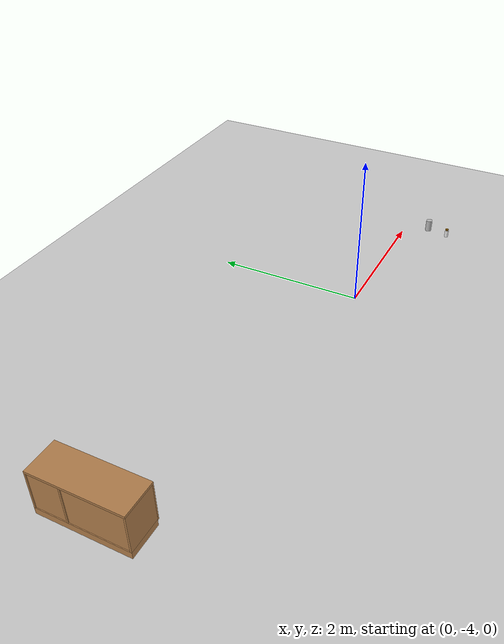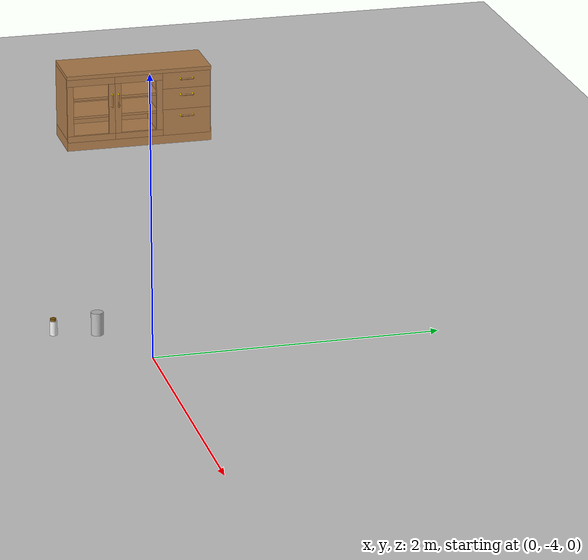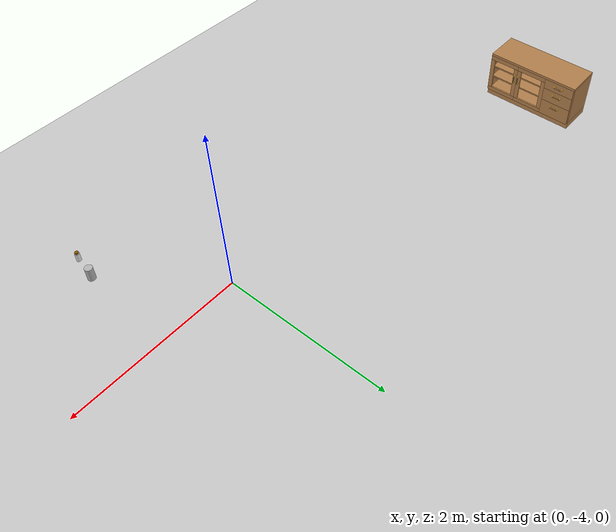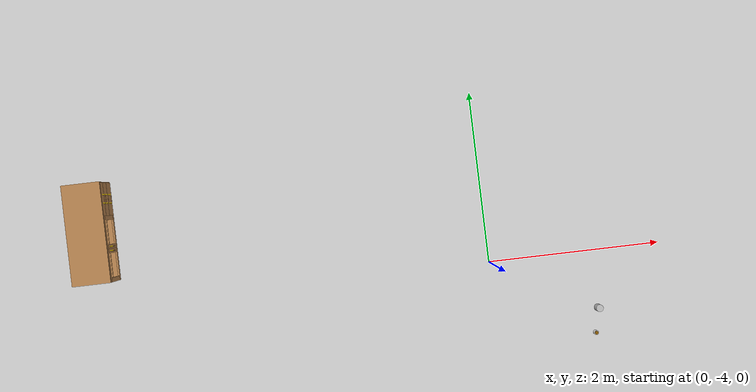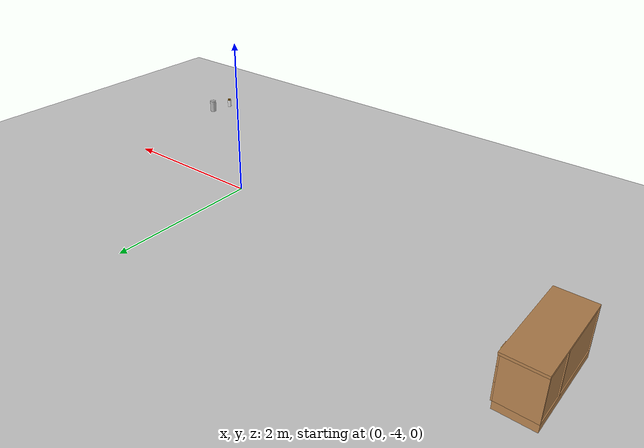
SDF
<sdf version="1.6">
 <world name="default">
  <model name="ground_plane">
   <static>1</static>
   <link name="link">
    <collision name="collision">
     <geometry><plane><normal>0 0 1</normal><size>100 100</size></plane></geometry>
     <surface>
      <contact><collide_bitmask>65535</collide_bitmask></contact>
      <friction><ode><mu>100</mu><mu2>50</mu2></ode></friction>
     </surface>
    </collision>
    <visual name="visual">
     <cast_shadows>0</cast_shadows>
     <geometry><plane><normal>0 0 1</normal><size>100 100</size></plane></geometry>
     <material>
      <script><uri>file://media/materials/scripts/gazebo.material</uri><name>Gazebo/Grey</name></script>
     </material>
    </visual>
   </link>
  </model>
  <model name="small_bottle">
   <link name="link">
    <inertial>
     <mass>0.05</mass>
     <inertia><ixx>0.00058</ixx><ixy>0</ixy><ixz>0</ixz><iyy>0.00058</iyy><iyz>0</iyz><izz>0.00016</izz></inertia>
    </inertial>
    <visual name="top">
     <pose>0 0 0.0555 0 -0 0</pose>
     <geometry><cylinder><radius>0.019</radius><length>0.016</length></cylinder></geometry>
     <material>
      <ambient>1 0.647 0 1</ambient>
      <diffuse>0.5 0.3235 0 1</diffuse>
      <specular>0.1 0.1 0.1 1</specular>
      <emissive>0 0 0 0</emissive>
     </material>
    </visual>
    <collision name="collision_top">
     <pose>0 0 0.0555 0 -0 0</pose>
     <geometry><cylinder><radius>0.019</radius><length>0.016</length></cylinder></geometry>
     <surface>
      <bounce><restitution_coefficient>0.2</restitution_coefficient><threshold>0</threshold></bounce>
      <contact><ode><kp>10000</kp><max_vel>10</max_vel></ode></contact>
     </surface>
    </collision>
    <visual name="bottom">
     <geometry><cylinder><radius>0.0245</radius><length>0.095</length></cylinder></geometry>
     <material>
      <script><uri>model://base_materials/color/scripts</uri><name>hsr_color/white</name></script>
     </material>
    </visual>
    <collision name="collision_bottom">
     <geometry><cylinder><radius>0.0245</radius><length>0.095</length></cylinder></geometry>
     <surface>
      <bounce><restitution_coefficient>0.2</restitution_coefficient><threshold>0</threshold></bounce>
      <contact><ode><kp>100000</kp><max_vel>10</max_vel></ode></contact>
     </surface>
    </collision>
    <velocity_decay><linear>0</linear><angular>0</angular></velocity_decay>
   </link>
   <static>0</static>
   <pose>1.04246 -4.87735 0.7075 -8e-06 -2e-06 -1e-05</pose>
  </model>
  <model name="cocacola">
   <static>0</static>
   <link name="link">
    <inertial>
     <mass>0.25</mass>
     <inertia><ixx>0</ixx><ixy>0</ixy><ixz>0</ixz><iyy>0</iyy><iyz>0</iyz><izz>0</izz></inertia>
    </inertial>
    <collision name="collision">
     <pose>0 0 0.075 -3.14159 -0 0</pose>
     <geometry><cylinder><radius>0.04</radius><length>0.15</length></cylinder></geometry>
    </collision>
    <visual name="visual">
     <pose>0 0 0.075 -3.14159 -0 0</pose>
     <geometry><cylinder><radius>0.04</radius><length>0.15</length></cylinder></geometry>
     <material>
      <script>
       <uri>model://cocacola/material/scripts</uri>
       <uri>model://cocacola/material/textures</uri>
       <name>Custom/cocacola</name>
      </script>
     </material>
    </visual>
    <velocity_decay><linear>0</linear><angular>0</angular></velocity_decay>
   </link>
   <pose>1.10141 -4.60574 0.660002 0.000475 0.000195 2.9e-05</pose>
  </model>
  <model name="living_sideboard">
   <link name="link">
    <inertial>
     <mass>10</mass>
     <inertia><ixx>1</ixx><ixy>0</ixy><ixz>0</ixz><iyy>1</iyy><iyz>0</iyz><izz>1</izz></inertia>
    </inertial>
    <visual name="left_board">
     <pose>-0.23 0.01 0.3375 0 -0 0</pose>
     <geometry><box><size>0.42 0.02 0.495</size></box></geometry>
     <material>
      <script><uri>model://base_materials/wood/scripts/wood.material</uri><name>base_materials/wood</name></script>
     </material>
    </visual>
    <collision name="collision_left_board">
     <pose>-0.23 0.01 0.3375 0 -0 0</pose>
     <geometry><box><size>0.42 0.02 0.495</size></box></geometry>
    </collision>
    <visual name="back_board">
     <pose>-0.42 0.575 0.2925 0 -0 0</pose>
     <geometry><box><size>0.02 1.11 0.585</size></box></geometry>
     <material>
      <script><uri>model://base_materials/wood/scripts/wood.material</uri><name>base_materials/wood</name></script>
     </material>
    </visual>
    <collision name="collision_back_board">
     <pose>-0.42 0.575 0.2925 0 -0 0</pose>
     <geometry><box><size>0.02 1.11 0.585</size></box></geometry>
    </collision>
    <visual name="right_board">
     <pose>-0.23 1.14 0.3375 0 -0 0</pose>
     <geometry><box><size>0.42 0.02 0.495</size></box></geometry>
     <material>
      <script><uri>model://base_materials/wood/scripts/wood.material</uri><name>base_materials/wood</name></script>
     </material>
    </visual>
    <collision name="collision_right_board">
     <pose>-0.23 1.14 0.3375 0 -0 0</pose>
     <geometry><box><size>0.42 0.02 0.495</size></box></geometry>
    </collision>
    <visual name="center_vertical_board1">
     <pose>-0.23 0.74 0.3375 0 -0 0</pose>
     <geometry><box><size>0.42 0.02 0.495</size></box></geometry>
     <material>
      <script><uri>model://base_materials/wood/scripts/wood.material</uri><name>base_materials/wood</name></script>
     </material>
    </visual>
    <collision name="collision_center_vertical_board1">
     <pose>-0.23 0.74 0.3375 0 -0 0</pose>
     <geometry><box><size>0.42 0.02 0.495</size></box></geometry>
    </collision>
    <visual name="top_board">
     <pose>-0.22 0.575 0.6 0 -0 0</pose>
     <geometry><box><size>0.44 1.15 0.03</size></box></geometry>
     <material>
      <script><uri>model://base_materials/wood/scripts/wood.material</uri><name>base_materials/wood</name></script>
     </material>
    </visual>
    <collision name="collision_top_board">
     <pose>-0.22 0.575 0.6 0 -0 0</pose>
     <geometry><box><size>0.44 1.15 0.03</size></box></geometry>
    </collision>
    <visual name="bottom_board">
     <pose>-0.23 0.575 0.045 0 -0 0</pose>
     <geometry><box><size>0.42 1.15 0.09</size></box></geometry>
     <material>
      <script><uri>model://base_materials/wood/scripts/wood.material</uri><name>base_materials/wood</name></script>
     </material>
    </visual>
    <collision name="collision_bottom_board">
     <pose>-0.23 0.575 0.045 0 -0 0</pose>
     <geometry><box><size>0.42 1.15 0.09</size></box></geometry>
    </collision>
    <visual name="1st_shelf">
     <pose>-0.225 0.37 0.259 0 -0 0</pose>
     <geometry><box><size>0.36 0.72 0.018</size></box></geometry>
     <material>
      <script><uri>model://base_materials/wood/scripts/wood.material</uri><name>base_materials/wood</name></script>
     </material>
    </visual>
    <collision name="collision_1st_shelf">
     <pose>-0.225 0.37 0.259 0 -0 0</pose>
     <geometry><box><size>0.36 0.72 0.018</size></box></geometry>
    </collision>
    <visual name="2nd_shelf">
     <pose>-0.225 0.37 0.407 0 -0 0</pose>
     <geometry><box><size>0.36 0.72 0.018</size></box></geometry>
     <material>
      <script><uri>model://base_materials/wood/scripts/wood.material</uri><name>base_materials/wood</name></script>
     </material>
    </visual>
    <collision name="collision_2nd_shelf">
     <pose>-0.225 0.37 0.407 0 -0 0</pose>
     <geometry><box><size>0.36 0.72 0.018</size></box></geometry>
    </collision>
    <visual name="1st_drawer">
     <pose>-0.2025 0.95 0.52 0 -0 0</pose>
     <geometry><box><size>0.405 0.38 0.13</size></box></geometry>
     <material>
      <script><uri>model://base_materials/wood/scripts/wood.material</uri><name>base_materials/wood</name></script>
     </material>
    </visual>
    <collision name="collision_1st_drawer">
     <pose>-0.2025 0.95 0.52 0 -0 0</pose>
     <geometry><box><size>0.405 0.38 0.13</size></box></geometry>
    </collision>
    <visual name="1st_drawer_handle_l1">
     <pose>0.015 0.9015 0.535 3.14159 1.57079 3.14159</pose>
     <geometry><cylinder><radius>0.006</radius><length>0.03</length></cylinder></geometry>
     <material>
      <ambient>1 0.84314 0 1</ambient>
      <diffuse>1 0.84314 0 1</diffuse>
      <specular>0.1 0.1 0.1 1</specular>
     </material>
    </visual>
    <collision name="collision_1st_drawer_handle_l1">
     <pose>0.015 0.9015 0.535 3.14159 1.57079 3.14159</pose>
     <geometry><cylinder><radius>0.006</radius><length>0.03</length></cylinder></geometry>
    </collision>
    <visual name="1st_drawer_handle_l2">
     <pose>0.03 0.9015 0.535 0 -0 0</pose>
     <geometry><sphere><radius>0.006</radius></sphere></geometry>
     <material>
      <ambient>1 0.84314 0 1</ambient>
      <diffuse>1 0.84314 0 1</diffuse>
      <specular>0.1 0.1 0.1 1</specular>
     </material>
    </visual>
    <collision name="collision_1st_drawer_handle_l2">
     <pose>0.03 0.9015 0.535 0 -0 0</pose>
     <geometry><sphere><radius>0.006</radius></sphere></geometry>
    </collision>
    <visual name="1st_drawer_handle_r1">
     <pose>0.015 0.9985 0.535 3.14159 1.57079 3.14159</pose>
     <geometry><cylinder><radius>0.006</radius><length>0.03</length></cylinder></geometry>
     <material>
      <ambient>1 0.84314 0 1</ambient>
      <diffuse>1 0.84314 0 1</diffuse>
      <specular>0.1 0.1 0.1 1</specular>
     </material>
    </visual>
    <collision name="collision_1st_drawer_handle_r1">
     <pose>0.015 0.9985 0.535 3.14159 1.57079 3.14159</pose>
     <geometry><cylinder><radius>0.006</radius><length>0.03</length></cylinder></geometry>
    </collision>
    <visual name="1st_drawer_handle_r2">
     <pose>0.03 0.9985 0.535 0 -0 0</pose>
     <geometry><sphere><radius>0.006</radius></sphere></geometry>
     <material>
      <ambient>1 0.84314 0 1</ambient>
      <diffuse>1 0.84314 0 1</diffuse>
      <specular>0.1 0.1 0.1 1</specular>
     </material>
    </visual>
    <collision name="collision_1st_drawer_handle_r2">
     <pose>0.03 0.9985 0.535 0 -0 0</pose>
     <geometry><sphere><radius>0.006</radius></sphere></geometry>
    </collision>
    <visual name="1st_drawer_handle_center">
     <pose>0.03 0.95 0.535 1.5708 -0 0</pose>
     <geometry><cylinder><radius>0.006</radius><length>0.097</length></cylinder></geometry>
     <material>
      <script><uri>model://base_materials/wood/scripts/wood.material</uri><name>base_materials/wood</name></script>
     </material>
    </visual>
    <collision name="collision_1st_drawer_handle_center">
     <pose>0.03 0.95 0.535 1.5708 -0 0</pose>
     <geometry><cylinder><radius>0.006</radius><length>0.097</length></cylinder></geometry>
    </collision>
    <visual name="2nd_drawer">
     <pose>-0.2025 0.95 0.37 0 -0 0</pose>
     <geometry><box><size>0.405 0.38 0.17</size></box></geometry>
     <material>
      <script><uri>model://base_materials/wood/scripts/wood.material</uri><name>base_materials/wood</name></script>
     </material>
    </visual>
    <collision name="collision_2nd_drawer">
     <pose>-0.2025 0.95 0.37 0 -0 0</pose>
     <geometry><box><size>0.405 0.38 0.17</size></box></geometry>
    </collision>
    <visual name="2nd_drawer_handle_l1">
     <pose>0.015 0.9015 0.405 3.14159 1.57079 3.14159</pose>
     <geometry><cylinder><radius>0.006</radius><length>0.03</length></cylinder></geometry>
     <material>
      <ambient>1 0.84314 0 1</ambient>
      <diffuse>1 0.84314 0 1</diffuse>
      <specular>0.1 0.1 0.1 1</specular>
     </material>
    </visual>
    <collision name="collision_2nd_drawer_handle_l1">
     <pose>0.015 0.9015 0.405 3.14159 1.57079 3.14159</pose>
     <geometry><cylinder><radius>0.006</radius><length>0.03</length></cylinder></geometry>
    </collision>
    <visual name="2nd_drawer_handle_l2">
     <pose>0.03 0.9015 0.405 0 -0 0</pose>
     <geometry><sphere><radius>0.006</radius></sphere></geometry>
     <material>
      <ambient>1 0.84314 0 1</ambient>
      <diffuse>1 0.84314 0 1</diffuse>
      <specular>0.1 0.1 0.1 1</specular>
     </material>
    </visual>
    <collision name="collision_2nd_drawer_handle_l2">
     <pose>0.03 0.9015 0.405 0 -0 0</pose>
     <geometry><sphere><radius>0.006</radius></sphere></geometry>
    </collision>
    <visual name="2nd_drawer_handle_r1">
     <pose>0.015 0.9985 0.405 3.14159 1.57079 3.14159</pose>
     <geometry><cylinder><radius>0.006</radius><length>0.03</length></cylinder></geometry>
     <material>
      <ambient>1 0.84314 0 1</ambient>
      <diffuse>1 0.84314 0 1</diffuse>
      <specular>0.1 0.1 0.1 1</specular>
     </material>
    </visual>
    <collision name="collision_2nd_drawer_handle_r1">
     <pose>0.015 0.9985 0.405 3.14159 1.57079 3.14159</pose>
     <geometry><cylinder><radius>0.006</radius><length>0.03</length></cylinder></geometry>
    </collision>
    <visual name="2nd_drawer_handle_r2">
     <pose>0.03 0.9985 0.405 0 -0 0</pose>
     <geometry><sphere><radius>0.006</radius></sphere></geometry>
     <material>
      <ambient>1 0.84314 0 1</ambient>
      <diffuse>1 0.84314 0 1</diffuse>
      <specular>0.1 0.1 0.1 1</specular>
     </material>
    </visual>
    <collision name="collision_2nd_drawer_handle_r2">
     <pose>0.03 0.9985 0.405 0 -0 0</pose>
     <geometry><sphere><radius>0.006</radius></sphere></geometry>
    </collision>
    <visual name="2nd_drawer_handle_center">
     <pose>0.03 0.95 0.405 1.5708 -0 0</pose>
     <geometry><cylinder><radius>0.006</radius><length>0.097</length></cylinder></geometry>
     <material>
      <script><uri>model://base_materials/wood/scripts/wood.material</uri><name>base_materials/wood</name></script>
     </material>
    </visual>
    <collision name="collision_2nd_drawer_handle_center">
     <pose>0.03 0.95 0.405 1.5708 -0 0</pose>
     <geometry><cylinder><radius>0.006</radius><length>0.097</length></cylinder></geometry>
    </collision>
    <visual name="3rd_drawer">
     <pose>-0.2025 0.95 0.18 0 -0 0</pose>
     <geometry><box><size>0.405 0.38 0.21</size></box></geometry>
     <material>
      <script><uri>model://base_materials/wood/scripts/wood.material</uri><name>base_materials/wood</name></script>
     </material>
    </visual>
    <collision name="collision_3rd_drawer">
     <pose>-0.2025 0.95 0.18 0 -0 0</pose>
     <geometry><box><size>0.405 0.38 0.21</size></box></geometry>
    </collision>
    <visual name="3rd_drawer_handle_l1">
     <pose>0.015 0.9015 0.235 3.14159 1.57079 3.14159</pose>
     <geometry><cylinder><radius>0.006</radius><length>0.03</length></cylinder></geometry>
     <material>
      <ambient>1 0.84314 0 1</ambient>
      <diffuse>1 0.84314 0 1</diffuse>
      <specular>0.1 0.1 0.1 1</specular>
     </material>
    </visual>
    <collision name="collision_3rd_drawer_handle_l1">
     <pose>0.015 0.9015 0.235 3.14159 1.57079 3.14159</pose>
     <geometry><cylinder><radius>0.006</radius><length>0.03</length></cylinder></geometry>
    </collision>
    <visual name="3rd_drawer_handle_l2">
     <pose>0.03 0.9015 0.235 0 -0 0</pose>
     <geometry><sphere><radius>0.006</radius></sphere></geometry>
     <material>
      <ambient>1 0.84314 0 1</ambient>
      <diffuse>1 0.84314 0 1</diffuse>
      <specular>0.1 0.1 0.1 1</specular>
     </material>
    </visual>
    <collision name="collision_3rd_drawer_handle_l2">
     <pose>0.03 0.9015 0.235 0 -0 0</pose>
     <geometry><sphere><radius>0.006</radius></sphere></geometry>
    </collision>
    <visual name="3rd_drawer_handle_r1">
     <pose>0.015 0.9985 0.235 3.14159 1.57079 3.14159</pose>
     <geometry><cylinder><radius>0.006</radius><length>0.03</length></cylinder></geometry>
     <material>
      <ambient>1 0.84314 0 1</ambient>
      <diffuse>1 0.84314 0 1</diffuse>
      <specular>0.1 0.1 0.1 1</specular>
     </material>
    </visual>
    <collision name="collision_3rd_drawer_handle_r1">
     <pose>0.015 0.9985 0.235 3.14159 1.57079 3.14159</pose>
     <geometry><cylinder><radius>0.006</radius><length>0.03</length></cylinder></geometry>
    </collision>
    <visual name="3rd_drawer_handle_r2">
     <pose>0.03 0.9985 0.235 0 -0 0</pose>
     <geometry><sphere><radius>0.006</radius></sphere></geometry>
     <material>
      <ambient>1 0.84314 0 1</ambient>
      <diffuse>1 0.84314 0 1</diffuse>
      <specular>0.1 0.1 0.1 1</specular>
     </material>
    </visual>
    <collision name="collision_3rd_drawer_handle_r2">
     <pose>0.03 0.9985 0.235 0 -0 0</pose>
     <geometry><sphere><radius>0.006</radius></sphere></geometry>
    </collision>
    <visual name="3rd_drawer_handle_center">
     <pose>0.03 0.95 0.235 1.5708 -0 0</pose>
     <geometry><cylinder><radius>0.006</radius><length>0.097</length></cylinder></geometry>
     <material>
      <script><uri>model://base_materials/wood/scripts/wood.material</uri><name>base_materials/wood</name></script>
     </material>
    </visual>
    <collision name="collision_3rd_drawer_handle_center">
     <pose>0.03 0.95 0.235 1.5708 -0 0</pose>
     <geometry><cylinder><radius>0.006</radius><length>0.097</length></cylinder></geometry>
    </collision>
    <visual name="left_door_left_frame">
     <pose>-0.01 0.025 0.3275 0 -0 0</pose>
     <geometry><box><size>0.02 0.05 0.405</size></box></geometry>
     <material>
      <script><uri>model://base_materials/wood/scripts/wood.material</uri><name>base_materials/wood</name></script>
     </material>
    </visual>
    <collision name="collision_left_door_left_frame">
     <pose>-0.01 0.025 0.3275 0 -0 0</pose>
     <geometry><box><size>0.02 0.05 0.405</size></box></geometry>
    </collision>
    <visual name="left_door_right_frame">
     <pose>-0.01 0.355 0.3275 0 -0 0</pose>
     <geometry><box><size>0.02 0.05 0.405</size></box></geometry>
     <material>
      <script><uri>model://base_materials/wood/scripts/wood.material</uri><name>base_materials/wood</name></script>
     </material>
    </visual>
    <collision name="collision_left_door_right_frame">
     <pose>-0.01 0.355 0.3275 0 -0 0</pose>
     <geometry><box><size>0.02 0.05 0.405</size></box></geometry>
    </collision>
    <visual name="left_door_handle_top1">
     <pose>0.015 0.355 0.4475 3.14159 1.57079 3.14159</pose>
     <geometry><cylinder><radius>0.006</radius><length>0.03</length></cylinder></geometry>
     <material>
      <ambient>1 0.84314 0 1</ambient>
      <diffuse>1 0.84314 0 1</diffuse>
      <specular>0.1 0.1 0.1 1</specular>
     </material>
    </visual>
    <collision name="collision_left_door_handle_top1">
     <pose>0.015 0.355 0.4475 3.14159 1.57079 3.14159</pose>
     <geometry><cylinder><radius>0.006</radius><length>0.03</length></cylinder></geometry>
    </collision>
    <visual name="left_door_handle_top2">
     <pose>0.03 0.355 0.4475 0 -0 0</pose>
     <geometry><sphere><radius>0.006</radius></sphere></geometry>
     <material>
      <ambient>1 0.84314 0 1</ambient>
      <diffuse>1 0.84314 0 1</diffuse>
      <specular>0.1 0.1 0.1 1</specular>
     </material>
    </visual>
    <collision name="collision_left_door_handle_top2">
     <pose>0.03 0.355 0.4475 0 -0 0</pose>
     <geometry><sphere><radius>0.006</radius></sphere></geometry>
    </collision>
    <visual name="left_door_handle_bottom1">
     <pose>0.015 0.355 0.3505 3.14159 1.57079 3.14159</pose>
     <geometry><cylinder><radius>0.006</radius><length>0.03</length></cylinder></geometry>
     <material>
      <ambient>1 0.84314 0 1</ambient>
      <diffuse>1 0.84314 0 1</diffuse>
      <specular>0.1 0.1 0.1 1</specular>
     </material>
    </visual>
    <collision name="collision_left_door_handle_bottom1">
     <pose>0.015 0.355 0.3505 3.14159 1.57079 3.14159</pose>
     <geometry><cylinder><radius>0.006</radius><length>0.03</length></cylinder></geometry>
    </collision>
    <visual name="left_door_handle_bottom2">
     <pose>0.03 0.355 0.3505 0 -0 0</pose>
     <geometry><sphere><radius>0.006</radius></sphere></geometry>
     <material>
      <ambient>1 0.84314 0 1</ambient>
      <diffuse>1 0.84314 0 1</diffuse>
      <specular>0.1 0.1 0.1 1</specular>
     </material>
    </visual>
    <collision name="collision_left_door_handle_bottom2">
     <pose>0.03 0.355 0.3505 0 -0 0</pose>
     <geometry><sphere><radius>0.006</radius></sphere></geometry>
    </collision>
    <visual name="left_door_handle_center">
     <pose>0.03 0.355 0.399 0 -0 0</pose>
     <geometry><cylinder><radius>0.006</radius><length>0.097</length></cylinder></geometry>
     <material>
      <script><uri>model://base_materials/wood/scripts/wood.material</uri><name>base_materials/wood</name></script>
     </material>
    </visual>
    <collision name="collision_left_door_handle_center">
     <pose>0.03 0.355 0.399 0 -0 0</pose>
     <geometry><cylinder><radius>0.006</radius><length>0.097</length></cylinder></geometry>
    </collision>
    <visual name="left_door_top_frame">
     <pose>-0.01 0.19 0.5575 0 -0 0</pose>
     <geometry><box><size>0.02 0.38 0.055</size></box></geometry>
     <material>
      <script><uri>model://base_materials/wood/scripts/wood.material</uri><name>base_materials/wood</name></script>
     </material>
    </visual>
    <collision name="collision_left_door_top_frame">
     <pose>-0.01 0.19 0.5575 0 -0 0</pose>
     <geometry><box><size>0.02 0.38 0.055</size></box></geometry>
    </collision>
    <visual name="left_door_bottom_frame">
     <pose>-0.01 0.19 0.1 0 -0 0</pose>
     <geometry><box><size>0.02 0.38 0.05</size></box></geometry>
     <material>
      <script><uri>model://base_materials/wood/scripts/wood.material</uri><name>base_materials/wood</name></script>
     </material>
    </visual>
    <collision name="collision_left_door_bottom_frame">
     <pose>-0.01 0.19 0.1 0 -0 0</pose>
     <geometry><box><size>0.02 0.38 0.05</size></box></geometry>
    </collision>
    <visual name="right_door_left_frame">
     <pose>-0.01 0.405 0.3275 0 -0 0</pose>
     <geometry><box><size>0.02 0.05 0.405</size></box></geometry>
     <material>
      <script><uri>model://base_materials/wood/scripts/wood.material</uri><name>base_materials/wood</name></script>
     </material>
    </visual>
    <collision name="collision_right_door_left_frame">
     <pose>-0.01 0.405 0.3275 0 -0 0</pose>
     <geometry><box><size>0.02 0.05 0.405</size></box></geometry>
    </collision>
    <visual name="right_door_right_frame">
     <pose>-0.01 0.735 0.3275 0 -0 0</pose>
     <geometry><box><size>0.02 0.05 0.405</size></box></geometry>
     <material>
      <script><uri>model://base_materials/wood/scripts/wood.material</uri><name>base_materials/wood</name></script>
     </material>
    </visual>
    <collision name="collision_right_door_right_frame">
     <pose>-0.01 0.735 0.3275 0 -0 0</pose>
     <geometry><box><size>0.02 0.05 0.405</size></box></geometry>
    </collision>
    <visual name="right_door_top_frame">
     <pose>-0.01 0.57 0.5575 0 -0 0</pose>
     <geometry><box><size>0.02 0.38 0.055</size></box></geometry>
     <material>
      <script><uri>model://base_materials/wood/scripts/wood.material</uri><name>base_materials/wood</name></script>
     </material>
    </visual>
    <collision name="collision_right_door_top_frame">
     <pose>-0.01 0.57 0.5575 0 -0 0</pose>
     <geometry><box><size>0.02 0.38 0.055</size></box></geometry>
    </collision>
    <visual name="right_door_bottom_frame">
     <pose>-0.01 0.57 0.1 0 -0 0</pose>
     <geometry><box><size>0.02 0.38 0.05</size></box></geometry>
     <material>
      <script><uri>model://base_materials/wood/scripts/wood.material</uri><name>base_materials/wood</name></script>
     </material>
    </visual>
    <collision name="collision_right_door_bottom_frame">
     <pose>-0.01 0.57 0.1 0 -0 0</pose>
     <geometry><box><size>0.02 0.38 0.05</size></box></geometry>
    </collision>
    <visual name="right_door_handle_top1">
     <pose>0.015 0.405 0.4475 3.14159 1.57079 3.14159</pose>
     <geometry><cylinder><radius>0.006</radius><length>0.03</length></cylinder></geometry>
     <material>
      <ambient>1 0.84314 0 1</ambient>
      <diffuse>1 0.84314 0 1</diffuse>
      <specular>0.1 0.1 0.1 1</specular>
     </material>
    </visual>
    <collision name="collision_right_door_handle_top1">
     <pose>0.015 0.405 0.4475 3.14159 1.57079 3.14159</pose>
     <geometry><cylinder><radius>0.006</radius><length>0.03</length></cylinder></geometry>
    </collision>
    <visual name="right_door_handle_top2">
     <pose>0.03 0.405 0.4475 0 -0 0</pose>
     <geometry><sphere><radius>0.006</radius></sphere></geometry>
     <material>
      <ambient>1 0.84314 0 1</ambient>
      <diffuse>1 0.84314 0 1</diffuse>
      <specular>0.1 0.1 0.1 1</specular>
     </material>
    </visual>
    <collision name="collision_right_door_handle_top2">
     <pose>0.03 0.405 0.4475 0 -0 0</pose>
     <geometry><sphere><radius>0.006</radius></sphere></geometry>
    </collision>
    <visual name="right_door_handle_bottom1">
     <pose>0.015 0.405 0.3505 3.14159 1.57079 3.14159</pose>
     <geometry><cylinder><radius>0.006</radius><length>0.03</length></cylinder></geometry>
     <material>
      <ambient>1 0.84314 0 1</ambient>
      <diffuse>1 0.84314 0 1</diffuse>
      <specular>0.1 0.1 0.1 1</specular>
     </material>
    </visual>
    <collision name="collision_right_door_handle_bottom1">
     <pose>0.015 0.405 0.3505 3.14159 1.57079 3.14159</pose>
     <geometry><cylinder><radius>0.006</radius><length>0.03</length></cylinder></geometry>
    </collision>
    <visual name="right_door_handle_bottom2">
     <pose>0.03 0.405 0.3505 0 -0 0</pose>
     <geometry><sphere><radius>0.006</radius></sphere></geometry>
     <material>
      <ambient>1 0.84314 0 1</ambient>
      <diffuse>1 0.84314 0 1</diffuse>
      <specular>0.1 0.1 0.1 1</specular>
     </material>
    </visual>
    <collision name="collision_right_door_handle_bottom2">
     <pose>0.03 0.405 0.3505 0 -0 0</pose>
     <geometry><sphere><radius>0.006</radius></sphere></geometry>
    </collision>
    <visual name="right_door_handle_center">
     <pose>0.03 0.405 0.399 0 -0 0</pose>
     <geometry><cylinder><radius>0.006</radius><length>0.097</length></cylinder></geometry>
     <material>
      <script><uri>model://base_materials/wood/scripts/wood.material</uri><name>base_materials/wood</name></script>
     </material>
    </visual>
    <collision name="collision_right_door_handle_center">
     <pose>0.03 0.4 0.399 0 -0 0</pose>
     <geometry><cylinder><radius>0.006</radius><length>0.097</length></cylinder></geometry>
    </collision>
    <velocity_decay><linear>0</linear><angular>0</angular></velocity_decay>
   </link>
   <static>1</static>
   <pose>-4.30402 -3.69919 0 0 -0 0</pose>
  </model>
 </world>
</sdf>
